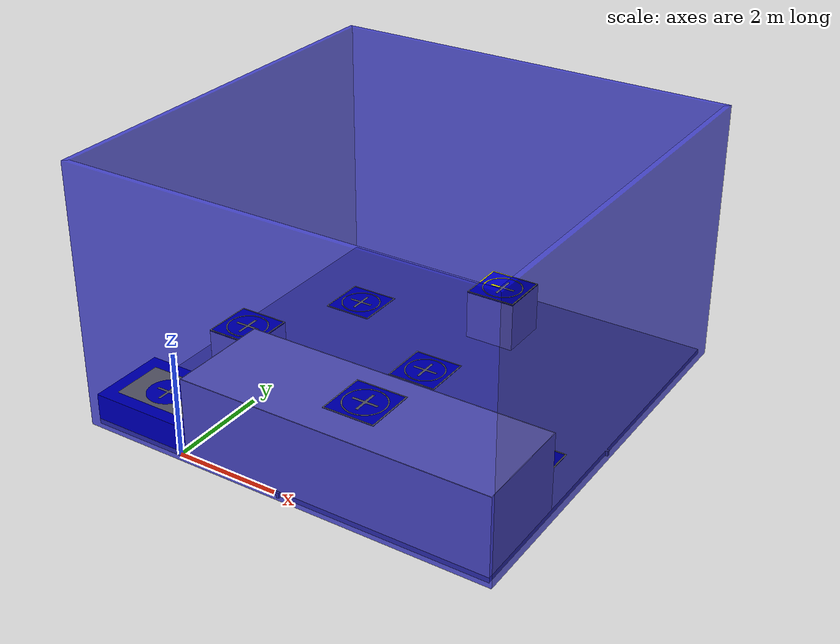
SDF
<sdf version='1.11'>
  <model name='arena_2025_desenho'>
    <link name='base_link'>
      <inertial>
        <pose>1.9370243713970241 3.7801517597274779 1.663648573955818 0 0 0</pose>
        <mass>209967.48191385559</mass>
        <inertia>
          <ixx>2460245.0337909479</ixx>
          <ixy>-120542.69931232629</ixy>
          <ixz>-60341.763518111897</ixz>
          <iyy>2418795.4424423119</iyy>
          <iyz>-44523.10562155582</iyz>
          <izz>3767137.4771538312</izz>
        </inertia>
      </inertial>
      <collision name='base_link_collision_collision'>
        <pose>0 0 0 0 0 0</pose>
        <geometry>
          <mesh>
            <scale>0.001 0.001 0.001</scale>
            <uri>meshes/base_link.stl</uri>
          </mesh>
        </geometry>
      </collision>
      <collision name='base_link_fixed_joint_lump__parede1_collision_collision_1'>
        <pose>-1.8502115568123969 -0.041793670335398492 -1.387778780781446e-17 0 0 0</pose>
        <geometry>
          <mesh>
            <scale>0.001 0.001 0.001</scale>
            <uri>meshes/parede1.stl</uri>
          </mesh>
        </geometry>
      </collision>
      <collision name='base_link_fixed_joint_lump__parede4_collision_collision_2'>
        <pose>-1.8502115568123969 -0.041793670335399817 -2.4355517602714372e-15 0 0 0</pose>
        <geometry>
          <mesh>
            <scale>0.001 0.001 0.001</scale>
            <uri>meshes/parede4.stl</uri>
          </mesh>
        </geometry>
      </collision>
      <collision name='base_link_fixed_joint_lump__parede3_collision_collision_3'>
        <pose>-1.8502115568123969 -0.041793670335398943 1.117161918529064e-15 1.224646799147353e-16 -7.4987989133092894e-33 1.224646799147353e-16</pose>
        <geometry>
          <mesh>
            <scale>0.001 0.001 0.001</scale>
            <uri>meshes/parede3.stl</uri>
          </mesh>
        </geometry>
      </collision>
      <collision name='base_link_fixed_joint_lump__parede2_collision_collision_4'>
        <pose>-1.8502115568123969 -0.041793670335398478 -1.387778780781446e-17 0 0 0</pose>
        <geometry>
          <mesh>
            <scale>0.001 0.001 0.001</scale>
            <uri>meshes/parede2.stl</uri>
          </mesh>
        </geometry>
      </collision>
      <collision name='base_link_fixed_joint_lump__Takeoff_Baseazul_collision_collision_5'>
        <pose>-1.8502115568123969 -0.041793670335398492 2.9143354396410359e-16 0 0 0</pose>
        <geometry>
          <mesh>
            <scale>0.001 0.001 0.001</scale>
            <uri>meshes/Takeoff_Baseazul.stl</uri>
          </mesh>
        </geometry>
      </collision>
      <collision name='base_link_fixed_joint_lump__Takeoff_Baseamarelo_collision_collision_6'>
        <pose>-1.8502115568123969 -0.041793670335398492 3.6082248300317588e-16 0 0 0</pose>
        <geometry>
          <mesh>
            <scale>0.001 0.001 0.001</scale>
            <uri>meshes/Takeoff_Baseamarelo.stl</uri>
          </mesh>
        </geometry>
      </collision>
      <collision name='base_link_fixed_joint_lump__Landing_Basesazul3_collision_collision_7'>
        <pose>-1.8502115568123969 -0.041793670335398048 0 0 0 0</pose>
        <geometry>
          <mesh>
            <scale>0.001 0.001 0.001</scale>
            <uri>meshes/Landing_Basesazul3.stl</uri>
          </mesh>
        </geometry>
      </collision>
      <collision name='base_link_fixed_joint_lump__Landing_Basesamarelo_3_collision_collision_8'>
        <pose>-1.8502115568123969 -0.041793670335398048 0 0 0 0</pose>
        <geometry>
          <mesh>
            <scale>0.001 0.001 0.001</scale>
            <uri>meshes/Landing_Basesamarelo_3.stl</uri>
          </mesh>
        </geometry>
      </collision>
      <collision name='base_link_fixed_joint_lump__Landing_Basesazul4_collision_collision_9'>
        <pose>-1.8502115568123969 -0.041793670335398048 0 0 0 0</pose>
        <geometry>
          <mesh>
            <scale>0.001 0.001 0.001</scale>
            <uri>meshes/Landing_Basesazul4.stl</uri>
          </mesh>
        </geometry>
      </collision>
      <collision name='base_link_fixed_joint_lump__Landing_Basesamarelo_4_collision_collision_10'>
        <pose>-1.8502115568123969 -0.041793670335398048 0 0 0 0</pose>
        <geometry>
          <mesh>
            <scale>0.001 0.001 0.001</scale>
            <uri>meshes/Landing_Basesamarelo_4.stl</uri>
          </mesh>
        </geometry>
      </collision>
      <collision name='base_link_fixed_joint_lump__Landing_Basesazul5_collision_collision_11'>
        <pose>-1.850211556812378 -0.041793670335390498 0 0 0 0</pose>
        <geometry>
          <mesh>
            <scale>0.001 0.001 0.001</scale>
            <uri>meshes/Landing_Basesazul5.stl</uri>
          </mesh>
        </geometry>
      </collision>
      <collision name='base_link_fixed_joint_lump__Landing_Basesamarelo_5_collision_collision_12'>
        <pose>-1.850211556812396 -0.041793670335398492 0 0 0 0</pose>
        <geometry>
          <mesh>
            <scale>0.001 0.001 0.001</scale>
            <uri>meshes/Landing_Basesamarelo_5.stl</uri>
          </mesh>
        </geometry>
      </collision>
      <collision name='base_link_fixed_joint_lump__casa_paredes_collision_collision_13'>
        <pose>-1.850211556812398 -0.041793670335398492 0 0 0 0</pose>
        <geometry>
          <mesh>
            <scale>0.001 0.001 0.001</scale>
            <uri>meshes/casa_paredes.stl</uri>
          </mesh>
        </geometry>
      </collision>
      <collision name='base_link_fixed_joint_lump__casa_teto_collision_collision_14'>
        <pose>-1.8502115568123949 -0.041793670335397937 1.110223024625157e-16 0 0 0</pose>
        <geometry>
          <mesh>
            <scale>0.001 0.001 0.001</scale>
            <uri>meshes/casa_teto.stl</uri>
          </mesh>
        </geometry>
      </collision>
      <collision name='base_link_fixed_joint_lump__Landing_Basesazul6_collision_collision_15'>
        <pose>-1.850211556812398 -0.041793670335398603 -1.110223024625157e-16 0 0 0</pose>
        <geometry>
          <mesh>
            <scale>0.001 0.001 0.001</scale>
            <uri>meshes/Landing_Basesazul6.stl</uri>
          </mesh>
        </geometry>
      </collision>
      <collision name='base_link_fixed_joint_lump__Landing_Basesamarelo_6_collision_collision_16'>
        <pose>-1.850211556812398 -0.041793670335398818 -0.0010000000000000011 0 0 0</pose>
        <geometry>
          <mesh>
            <scale>0.001 0.001 0.001</scale>
            <uri>meshes/Landing_Basesamarelo_6.stl</uri>
          </mesh>
        </geometry>
      </collision>
      <collision name='base_link_fixed_joint_lump__base_movelzinza1_collision_collision_17'>
        <pose>-1.8502115568123909 -0.041793670335380728 -0.00099999999999994538 0 0 0</pose>
        <geometry>
          <mesh>
            <scale>0.001 0.001 0.001</scale>
            <uri>meshes/base_movelzinza1.stl</uri>
          </mesh>
        </geometry>
      </collision>
      <collision name='base_link_fixed_joint_lump__Landing_Basesazul1_collision_collision_18'>
        <pose>-1.8502115568123889 -0.041793670335374067 1.490116363633831e-11 0 0 0</pose>
        <geometry>
          <mesh>
            <scale>0.001 0.001 0.001</scale>
            <uri>meshes/Landing_Basesazul1.stl</uri>
          </mesh>
        </geometry>
      </collision>
      <collision name='base_link_fixed_joint_lump__Landing_Basesamarelo_1_collision_collision_19'>
        <pose>-1.8502115568123849 -0.041793670335362958 1.490116363633831e-11 0 0 0</pose>
        <geometry>
          <mesh>
            <scale>0.001 0.001 0.001</scale>
            <uri>meshes/Landing_Basesamarelo_1.stl</uri>
          </mesh>
        </geometry>
      </collision>
      <collision name='base_link_fixed_joint_lump__base_movelzinza2_collision_collision_20'>
        <pose>-1.8502115568123969 -0.041793670335398048 -0.00099999999999994538 0 0 0</pose>
        <geometry>
          <mesh>
            <scale>0.001 0.001 0.001</scale>
            <uri>meshes/base_movelzinza2.stl</uri>
          </mesh>
        </geometry>
      </collision>
      <collision name='base_link_fixed_joint_lump__Landing_Basesazul2_collision_collision_21'>
        <pose>-1.8502115568123909 -0.041793670335388278 -0.0010000160932540909 0 0 0</pose>
        <geometry>
          <mesh>
            <scale>0.001 0.001 0.001</scale>
            <uri>meshes/Landing_Basesazul2.stl</uri>
          </mesh>
        </geometry>
      </collision>
      <collision name='base_link_fixed_joint_lump__Landing_Basesamarelo_2_collision_collision_22'>
        <pose>-1.8502115568123869 -0.04179367033538206 -0.0010000160932540909 0 0 0</pose>
        <geometry>
          <mesh>
            <scale>0.001 0.001 0.001</scale>
            <uri>meshes/Landing_Basesamarelo_2.stl</uri>
          </mesh>
        </geometry>
      </collision>

      #visuals cores

      <visual name='base_link_visual_visual'>
        <pose>0 0 0 0 0 0</pose>
        <geometry>
          <mesh>
            <scale>0.001 0.001 0.001</scale>
            <uri>meshes/base_link.stl</uri>
          </mesh>
        </geometry>
        <material>
          <ambient>0.4 0.4 0.4 1</ambient>
          <diffuse>0.6 0.6 0.6 1</diffuse>
          <specular>0.8 0.8 0.8 1</specular>
        </material>
      </visual>
      <visual name='base_link_fixed_joint_lump__parede1_visual_visual_1'>
        <pose>-1.8502115568123969 -0.041793670335398492 -1.387778780781446e-17 0 0 0</pose>
        <geometry>
          <mesh>
            <scale>0.001 0.001 0.001</scale>
            <uri>meshes/parede1.stl</uri>
          </mesh>
        </geometry>
        <material>
          <ambient>0.0 0.0 0.5 0.65</ambient>
          <diffuse>0.0 0.0 0.8 0.65</diffuse>
          <specular>0.3 0.3 0.8 0.65</specular>
          <transparency>0.65</transparency>
        </material>
      </visual>
      <visual name='base_link_fixed_joint_lump__parede4_visual_visual_2'>
        <pose>-1.8502115568123969 -0.041793670335399817 -2.4355517602714372e-15 0 0 0</pose>
        <geometry>
          <mesh>
            <scale>0.001 0.001 0.001</scale>
            <uri>meshes/parede4.stl</uri>
          </mesh>
        </geometry>
        <material>
          <ambient>0.0 0.0 0.5 0.65</ambient>
          <diffuse>0.0 0.0 0.8 0.65</diffuse>
          <specular>0.3 0.3 0.8 0.65</specular>
          <transparency>0.65</transparency>
        </material>
      </visual>
      <visual name='base_link_fixed_joint_lump__parede3_visual_visual_3'>
        <pose>-1.8502115568123969 -0.041793670335398943 1.117161918529064e-15 1.224646799147353e-16 -7.4987989133092894e-33 1.224646799147353e-16</pose>
        <geometry>
          <mesh>
            <scale>0.001 0.001 0.001</scale>
            <uri>meshes/parede3.stl</uri>
          </mesh>
        </geometry>
        <material>
          <ambient>0.0 0.0 0.5 0.65</ambient>
          <diffuse>0.0 0.0 0.8 0.65</diffuse>
          <specular>0.3 0.3 0.8 0.65</specular>
          <transparency>0.65</transparency>
        </material>
      </visual>
      <visual name='base_link_fixed_joint_lump__parede2_visual_visual_4'>
        <pose>-1.8502115568123969 -0.041793670335398478 -1.387778780781446e-17 0 0 0</pose>
        <geometry>
          <mesh>
            <scale>0.001 0.001 0.001</scale>
            <uri>meshes/parede2.stl</uri>
          </mesh>
        </geometry>
        <material>
          <ambient>0.0 0.0 0.5 0.65</ambient>
          <diffuse>0.0 0.0 0.8 0.65</diffuse>
          <specular>0.3 0.3 0.8 0.65</specular>
          <transparency>0.65</transparency>
        </material>
      </visual>
      <visual name='base_link_fixed_joint_lump__Takeoff_Baseazul_visual_visual_5'>
        <pose>-1.8502115568123969 -0.041793670335398492 2.9143354396410359e-16 0 0 0</pose>
        <geometry>
          <mesh>
            <scale>0.001 0.001 0.001</scale>
            <uri>meshes/Takeoff_Baseazul.stl</uri>
          </mesh>
        </geometry>
        <material>
          <ambient>0.0 0.0 0.5 1</ambient>
          <diffuse>0.0 0.0 0.8 1</diffuse>
          <specular>0.3 0.3 0.8 1</specular>
        </material>
      </visual>
      <visual name='base_link_fixed_joint_lump__Takeoff_Baseamarelo_visual_visual_6'>
        <pose>-1.8502115568123969 -0.041793670335398492 3.6082248300317588e-16 0 0 0</pose>
        <geometry>
          <mesh>
            <scale>0.001 0.001 0.001</scale>
            <uri>meshes/Takeoff_Baseamarelo.stl</uri>
          </mesh>
        </geometry>
        <material>
          <ambient>0.8 0.8 0.0 1</ambient>
          <diffuse>1.0 1.0 0.0 1</diffuse>
           <specular>0.8 0.8 0.3 1</specular>
        </material>
      </visual>
      <visual name='base_link_fixed_joint_lump__Landing_Basesazul3_visual_visual_7'>
        <pose>-1.8502115568123969 -0.041793670335398048 0 0 0 0</pose>
        <geometry>
          <mesh>
            <scale>0.001 0.001 0.001</scale>
            <uri>meshes/Landing_Basesazul3.stl</uri>
          </mesh>
        </geometry>
        <material>
          <ambient>0.0 0.0 0.5 1</ambient>
          <diffuse>0.0 0.0 0.8 1</diffuse>
          <specular>0.3 0.3 0.8 1</specular>
        </material>
      </visual>
      <visual name='base_link_fixed_joint_lump__Landing_Basesamarelo_3_visual_visual_8'>
        <pose>-1.8502115568123969 -0.041793670335398048 0 0 0 0</pose>
        <geometry>
          <mesh>
            <scale>0.001 0.001 0.001</scale>
            <uri>meshes/Landing_Basesamarelo_3.stl</uri>
          </mesh>
        </geometry>
        <material>
          <ambient>0.8 0.8 0.0 1</ambient>
          <diffuse>1.0 1.0 0.0 1</diffuse>
           <specular>0.8 0.8 0.3 1</specular>
        </material>
      </visual>
      <visual name='base_link_fixed_joint_lump__Landing_Basesazul4_visual_visual_9'>
        <pose>-1.8502115568123969 -0.041793670335398048 0 0 0 0</pose>
        <geometry>
          <mesh>
            <scale>0.001 0.001 0.001</scale>
            <uri>meshes/Landing_Basesazul4.stl</uri>
          </mesh>
        </geometry>
        <material>
          <ambient>0.0 0.0 0.5 1</ambient>
          <diffuse>0.0 0.0 0.8 1</diffuse>
          <specular>0.3 0.3 0.8 1</specular>
        </material>
      </visual>
      <visual name='base_link_fixed_joint_lump__Landing_Basesamarelo_4_visual_visual_10'>
        <pose>-1.8502115568123969 -0.041793670335398048 0 0 0 0</pose>
        <geometry>
          <mesh>
            <scale>0.001 0.001 0.001</scale>
            <uri>meshes/Landing_Basesamarelo_4.stl</uri>
          </mesh>
        </geometry>
        <material>
          <ambient>0.8 0.8 0.0 1</ambient>
          <diffuse>1.0 1.0 0.0 1</diffuse>
           <specular>0.8 0.8 0.3 1</specular>
        </material>
      </visual>
      <visual name='base_link_fixed_joint_lump__Landing_Basesazul5_visual_visual_11'>
        <pose>-1.850211556812378 -0.041793670335390498 0 0 0 0</pose>
        <geometry>
          <mesh>
            <scale>0.001 0.001 0.001</scale>
            <uri>meshes/Landing_Basesazul5.stl</uri>
          </mesh>
        </geometry>
        <material>
          <ambient>0.0 0.0 0.5 1</ambient>
          <diffuse>0.0 0.0 0.8 1</diffuse>
          <specular>0.3 0.3 0.8 1</specular>
        </material>
      </visual>
      <visual name='base_link_fixed_joint_lump__Landing_Basesamarelo_5_visual_visual_12'>
        <pose>-1.850211556812396 -0.041793670335398492 0 0 0 0</pose>
        <geometry>
          <mesh>
            <scale>0.001 0.001 0.001</scale>
            <uri>meshes/Landing_Basesamarelo_5.stl</uri>
          </mesh>
        </geometry>
        <material>
          <ambient>0.8 0.8 0.0 1</ambient>
          <diffuse>1.0 1.0 0.0 1</diffuse>
           <specular>0.8 0.8 0.3 1</specular>
        </material>
      </visual>
      <visual name='base_link_fixed_joint_lump__casa_paredes_visual_visual_13'>
        <pose>-1.850211556812398 -0.041793670335398492 0 0 0 0</pose>
        <geometry>
          <mesh>
            <scale>0.001 0.001 0.001</scale>
            <uri>meshes/casa_paredes.stl</uri>
          </mesh>
        </geometry>
        <material>
          <ambient>0.92 0.90 0.85 1</ambient>
          <diffuse>0.94 0.92 0.87 1</diffuse>
          <specular>0.14 0.14 0.13 1</specular>
        </material>
      </visual>
      <visual name='base_link_fixed_joint_lump__casa_teto_visual_visual_14'>
        <pose>-1.8502115568123949 -0.041793670335397937 1.110223024625157e-16 0 0 0</pose>
        <geometry>
          <mesh>
            <scale>0.001 0.001 0.001</scale>
            <uri>meshes/casa_teto.stl</uri>
          </mesh>
        </geometry>
        <material>
          <ambient>0.92 0.90 0.85 1</ambient>
          <diffuse>0.94 0.92 0.87 1</diffuse>
          <specular>0.14 0.14 0.13 1</specular>
        </material>
      </visual>
      <visual name='base_link_fixed_joint_lump__Landing_Basesazul6_visual_visual_15'>
        <pose>-1.850211556812398 -0.041793670335398603 -1.110223024625157e-16 0 0 0</pose>
        <geometry>
          <mesh>
            <scale>0.001 0.001 0.001</scale>
            <uri>meshes/Landing_Basesazul6.stl</uri>
          </mesh>
        </geometry>
        <material>
          <ambient>0.0 0.0 0.5 1</ambient>
          <diffuse>0.0 0.0 0.8 1</diffuse>
          <specular>0.3 0.3 0.8 1</specular>
        </material>
      </visual>
      <visual name='base_link_fixed_joint_lump__Landing_Basesamarelo_6_visual_visual_16'>
        <pose>-1.850211556812398 -0.041793670335398818 -0.0010000000000000011 0 0 0</pose>
        <geometry>
          <mesh>
            <scale>0.001 0.001 0.001</scale>
            <uri>meshes/Landing_Basesamarelo_6.stl</uri>
          </mesh>
        </geometry>
        <material>
          <ambient>0.8 0.8 0.0 1</ambient>
          <diffuse>1.0 1.0 0.0 1</diffuse>
           <specular>0.8 0.8 0.3 1</specular>
        </material>
      </visual>
      <visual name='base_link_fixed_joint_lump__base_movelzinza1_visual_visual_17'>
        <pose>-1.8502115568123909 -0.041793670335380728 -0.00099999999999994538 0 0 0</pose>
        <geometry>
          <mesh>
            <scale>0.001 0.001 0.001</scale>
            <uri>meshes/base_movelzinza1.stl</uri>
          </mesh>
        </geometry>
        <material>
          <ambient>0.92 0.90 0.85 1</ambient>
          <diffuse>0.94 0.92 0.87 1</diffuse>
          <specular>0.14 0.14 0.13 1</specular>
        </material>
      </visual>
      <visual name='base_link_fixed_joint_lump__Landing_Basesazul1_visual_visual_18'>
        <pose>-1.8502115568123889 -0.041793670335374067 1.490116363633831e-11 0 0 0</pose>
        <geometry>
          <mesh>
            <scale>0.001 0.001 0.001</scale>
            <uri>meshes/Landing_Basesazul1.stl</uri>
          </mesh>
        </geometry>
        <material>
          <ambient>0.0 0.0 0.5 1</ambient>
          <diffuse>0.0 0.0 0.8 1</diffuse>
          <specular>0.3 0.3 0.8 1</specular>
        </material>
      </visual>
      <visual name='base_link_fixed_joint_lump__Landing_Basesamarelo_1_visual_visual_19'>
        <pose>-1.8502115568123849 -0.041793670335362958 1.490116363633831e-11 0 0 0</pose>
        <geometry>
          <mesh>
            <scale>0.001 0.001 0.001</scale>
            <uri>meshes/Landing_Basesamarelo_1.stl</uri>
          </mesh>
        </geometry>
        <material>
          <ambient>0.8 0.8 0.0 1</ambient>
          <diffuse>1.0 1.0 0.0 1</diffuse>
           <specular>0.8 0.8 0.3 1</specular>
        </material>
      </visual>
      <visual name='base_link_fixed_joint_lump__base_movelzinza2_visual_visual_20'>
        <pose>-1.8502115568123969 -0.041793670335398048 -0.00099999999999994538 0 0 0</pose>
        <geometry>
          <mesh>
            <scale>0.001 0.001 0.001</scale>
            <uri>meshes/base_movelzinza2.stl</uri>
          </mesh>
        </geometry>
        <material>
          <ambient>0.92 0.90 0.85 1</ambient>
          <diffuse>0.94 0.92 0.87 1</diffuse>
          <specular>0.14 0.14 0.13 1</specular>
        </material>
      </visual>
      <visual name='base_link_fixed_joint_lump__Landing_Basesazul2_visual_visual_21'>
        <pose>-1.8502115568123909 -0.041793670335388278 -0.0010000160932540909 0 0 0</pose>
        <geometry>
          <mesh>
            <scale>0.001 0.001 0.001</scale>
            <uri>meshes/Landing_Basesazul2.stl</uri>
          </mesh>
        </geometry>
        <material>
          <ambient>0.0 0.0 0.5 1</ambient>
          <diffuse>0.0 0.0 0.8 1</diffuse>
          <specular>0.3 0.3 0.8 1</specular>
        </material>
      </visual>
      <visual name='base_link_fixed_joint_lump__Landing_Basesamarelo_2_visual_visual_22'>
        <pose>-1.8502115568123869 -0.04179367033538206 -0.0010000160932540909 0 0 0</pose>
        <geometry>
          <mesh>
            <scale>0.001 0.001 0.001</scale>
            <uri>meshes/Landing_Basesamarelo_2.stl</uri>
          </mesh>
        </geometry>
        <material>
          <ambient>0.8 0.8 0.0 1</ambient>
          <diffuse>1.0 1.0 0.0 1</diffuse>
           <specular>0.8 0.8 0.3 1</specular>
        </material>
      </visual>
    </link>
    <frame name='base_link_Rígido-31' attached_to='base_link'>
      <pose>-1.900211556812397 3.958206329664602 0.050000000000000051 0 -1.5707963267948966 0</pose>
    </frame>
    <frame name='parede1' attached_to='base_link_Rígido-31'>
      <pose>0 0 0 0 0 0</pose>
    </frame>
    <frame name='base_link_Rígido-32' attached_to='base_link'>
      <pose>2.1497884431876031 8.0082063296646009 0.050000000000000051 -1.5707963267948959 0 0</pose>
    </frame>
    <frame name='parede4' attached_to='base_link_Rígido-32'>
      <pose>0 0 0 0 0 0</pose>
    </frame>
    <frame name='base_link_Rígido-33' attached_to='base_link'>
      <pose>6.1997884431876038 3.958206319664602 0.050000000000000051 -3.1415926535897931 -1.5707963267948966 0</pose>
    </frame>
    <frame name='parede3' attached_to='base_link_Rígido-33'>
      <pose>0 0 0 0 0 0</pose>
    </frame>
    <frame name='base_link_Rígido-34' attached_to='base_link'>
      <pose>2.1497884431876031 -0.091793670335398481 0.050000000000000051 1.5707963267948959 0 0</pose>
    </frame>
    <frame name='parede2' attached_to='base_link_Rígido-34'>
      <pose>0 0 0 0 0 0</pose>
    </frame>
    <frame name='Takeoff_Baseazul_Rígido-44' attached_to='Takeoff_Baseazul'>
      <pose>0 0 0.49099999999999999 0 0 0</pose>
    </frame>
    <frame name='Takeoff_Baseamarelo' attached_to='Takeoff_Baseazul_Rígido-44'>
      <pose>0 0 0 0 0 0</pose>
    </frame>
    <frame name='base_link_Rígido-35' attached_to='base_link'>
      <pose>-0.85021155681239691 0.70820632966460151 0.09900000000000006 0 0 0</pose>
    </frame>
    <frame name='Takeoff_Baseazul' attached_to='base_link_Rígido-35'>
      <pose>0 0 0 0 0 0</pose>
    </frame>
    <frame name='Landing_Basesazul3_Rígido-46' attached_to='Landing_Basesazul3'>
      <pose>0 0 0.0059999999999999967 0 0 0</pose>
    </frame>
    <frame name='Landing_Basesamarelo_3' attached_to='Landing_Basesazul3_Rígido-46'>
      <pose>0 0 0 0 0 0</pose>
    </frame>
    <frame name='base_link_Rígido-37' attached_to='base_link'>
      <pose>-0.35021155681239691 5.958206329664602 0.09900000000000006 0 0 0</pose>
    </frame>
    <frame name='Landing_Basesazul3' attached_to='base_link_Rígido-37'>
      <pose>0 0 0 0 0 0</pose>
    </frame>
    <frame name='Landing_Basesazul4_Rígido-48' attached_to='Landing_Basesazul4'>
      <pose>0 0 0.0050000000000000001 0 0 0</pose>
    </frame>
    <frame name='Landing_Basesamarelo_4' attached_to='Landing_Basesazul4_Rígido-48'>
      <pose>0 0 0 0 0 0</pose>
    </frame>
    <frame name='base_link_Rígido-38' attached_to='base_link'>
      <pose>2.1497884431876031 4.458206329664602 0.09900000000000006 0 0 0</pose>
    </frame>
    <frame name='Landing_Basesazul4' attached_to='base_link_Rígido-38'>
      <pose>0 0 0 0 0 0</pose>
    </frame>
    <frame name='Landing_Basesazul5_Rígido-49' attached_to='Landing_Basesazul5'>
      <pose>0 0 0.0050000000000000001 0 0 0</pose>
    </frame>
    <frame name='Landing_Basesamarelo_5' attached_to='Landing_Basesazul5_Rígido-49'>
      <pose>0 0 0 0 0 0</pose>
    </frame>
    <frame name='base_link_Rígido-40' attached_to='base_link'>
      <pose>5.149788443187604 2.958206329664602 0.09900000000000006 0 0 0</pose>
    </frame>
    <frame name='Landing_Basesazul5' attached_to='base_link_Rígido-40'>
      <pose>0 0 0 0 0 0</pose>
    </frame>
    <frame name='Landing_Basesazul6_Rígido-50' attached_to='Landing_Basesazul6'>
      <pose>-5.6843418860808016e-16 -1.4210854715201999e-16 0.0050000000000000001 0 0 0</pose>
    </frame>
    <frame name='Landing_Basesamarelo_6' attached_to='Landing_Basesazul6_Rígido-50'>
      <pose>0 0 0 0 0 0</pose>
    </frame>
    <frame name='casa_teto_Rígido-43' attached_to='casa_teto'>
      <pose>0.011999969999999961 0.08800454000000002 0.0040000000000000573 0 0 0</pose>
    </frame>
    <frame name='Landing_Basesazul6' attached_to='casa_teto_Rígido-43'>
      <pose>0 0 0 0 0 0</pose>
    </frame>
    <frame name='casa_paredes_Rígido-42' attached_to='casa_paredes'>
      <pose>0 0 1.522 0 0 0</pose>
    </frame>
    <frame name='casa_teto' attached_to='casa_paredes_Rígido-42'>
      <pose>0 0 0 0 0 0</pose>
    </frame>
    <frame name='base_link_Rígido-41' attached_to='base_link'>
      <pose>3.1377884731876029 0.95820178966460146 0.073000000000000065 0 0 0</pose>
    </frame>
    <frame name='casa_paredes' attached_to='base_link_Rígido-41'>
      <pose>0 0 0 0 0 0</pose>
    </frame>
    <frame name='Landing_Basesazul1_Rígido-57' attached_to='Landing_Basesazul1'>
      <pose>-1.4210854715201999e-16 0 0.01099999999999994 0 0 0</pose>
    </frame>
    <frame name='Landing_Basesamarelo_1' attached_to='Landing_Basesazul1_Rígido-57'>
      <pose>0 0 0 0 0 0</pose>
    </frame>
    <frame name='base_movelzinza1_Rígido-56' attached_to='base_movelzinza1'>
      <pose>0 0 0.72999999999999998 0 0 0</pose>
    </frame>
    <frame name='Landing_Basesazul1' attached_to='base_movelzinza1_Rígido-56'>
      <pose>0 0 0 0 0 0</pose>
    </frame>
    <frame name='base_link_Rígido-58' attached_to='base_link'>
      <pose>-0.85021155681239691 2.958206329664602 0.09900000000000006 0 0 0</pose>
    </frame>
    <frame name='base_movelzinza1' attached_to='base_link_Rígido-58'>
      <pose>0 0 0 0 0 0</pose>
    </frame>
    <frame name='Landing_Basesazul2_Rígido-61' attached_to='Landing_Basesazul2'>
      <pose>0 0 0.0099999800000000506 0 0 0</pose>
    </frame>
    <frame name='Landing_Basesamarelo_2' attached_to='Landing_Basesazul2_Rígido-61'>
      <pose>0 0 0 0 0 0</pose>
    </frame>
    <frame name='base_movelzinza2_Rígido-60' attached_to='base_movelzinza2'>
      <pose>0 0 0.97999999999999998 0 0 0</pose>
    </frame>
    <frame name='Landing_Basesazul2' attached_to='base_movelzinza2_Rígido-60'>
      <pose>0 0 0 0 0 0</pose>
    </frame>
    <frame name='base_link_Rígido-59' attached_to='base_link'>
      <pose>2.6497884431876031 6.458206329664602 0.09900000000000006 0 0 0</pose>
    </frame>
    <frame name='base_movelzinza2' attached_to='base_link_Rígido-59'>
      <pose>0 0 0 0 0 0</pose>
    </frame>
  </model>
</sdf>
